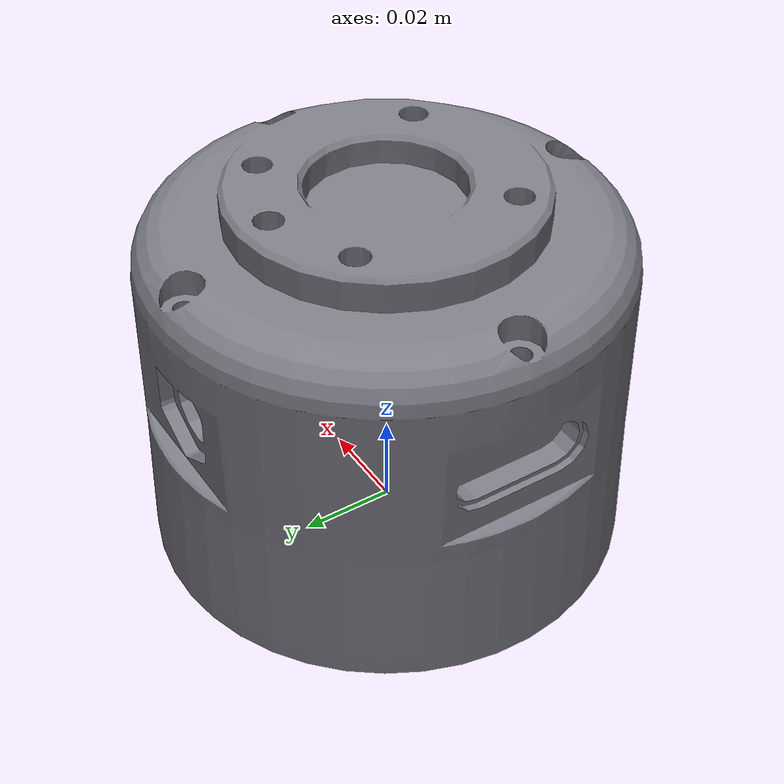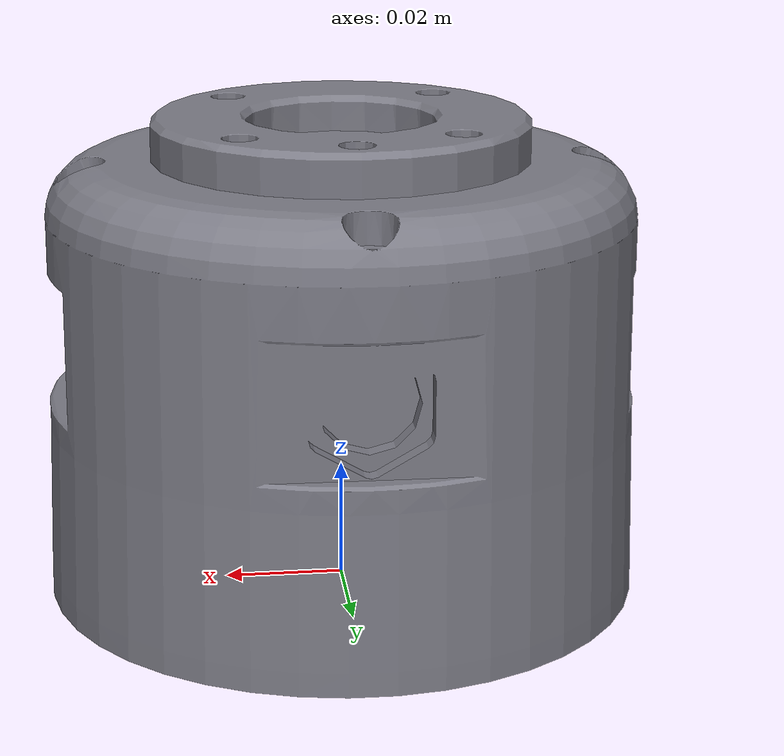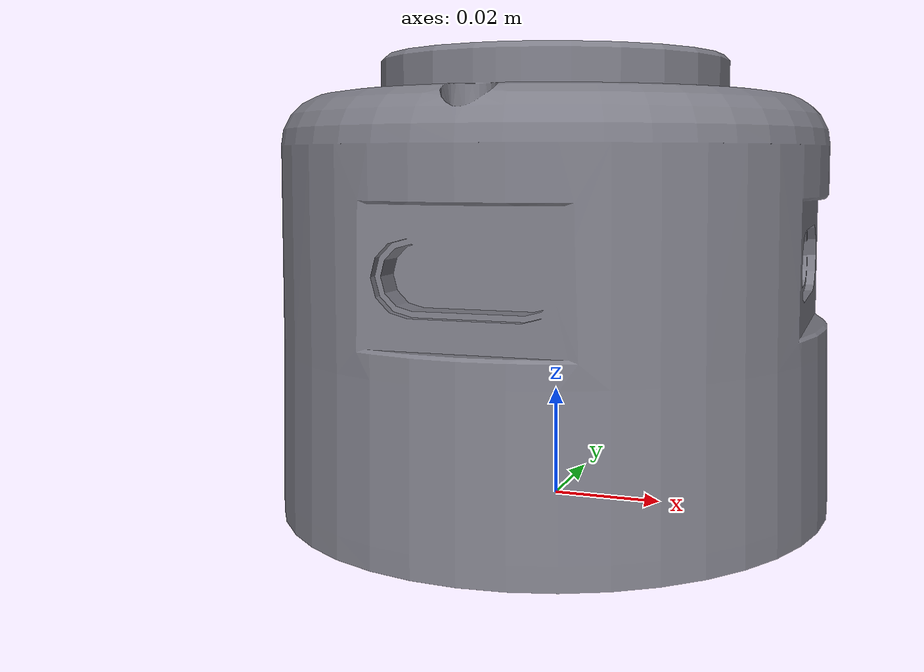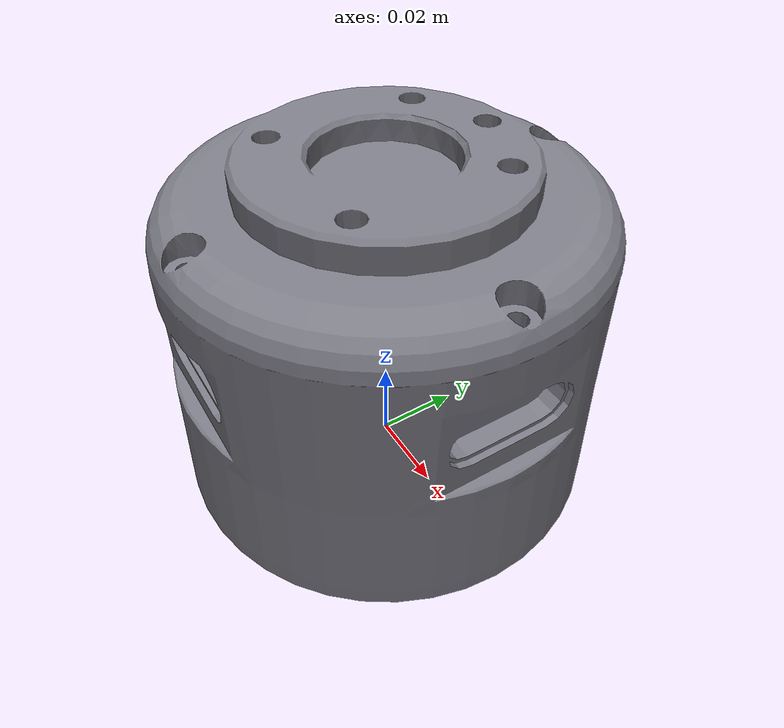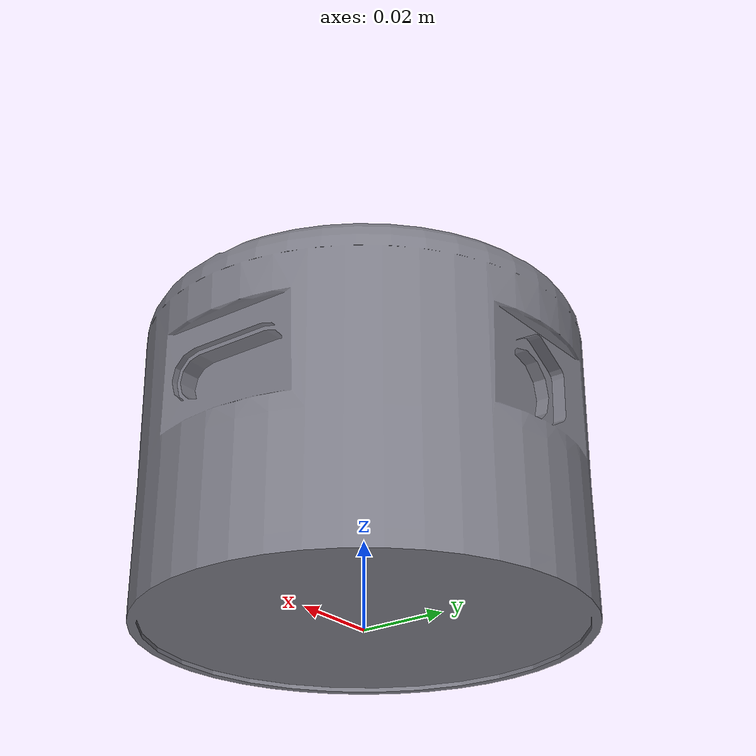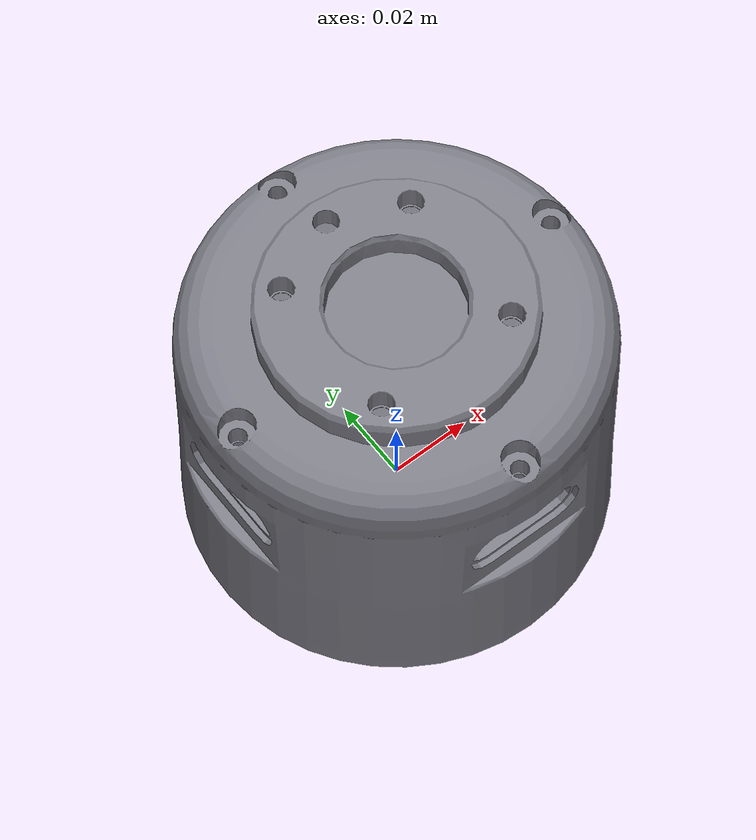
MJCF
<mujoco model="link7">
  <default>
    <default class="visual">
      <geom group="2" type="mesh" contype="0" conaffinity="0"/>
    </default>
    <default class="collision">
      <geom group="3" type="mesh"/>
    </default>
  </default>
  <asset>
    <material name="robot" specular="0.600013" shininess="0.015686281" rgba="0.487364 0.487364 0.527718 1.000000"/>
    <mesh file="link7.obj"/>
  </asset>
  <worldbody>
    <body name="link7">
      <geom material="robot" mesh="link7" class="visual"/>
      <geom mesh="link7" class="collision"/>
    </body>
  </worldbody>
</mujoco>
